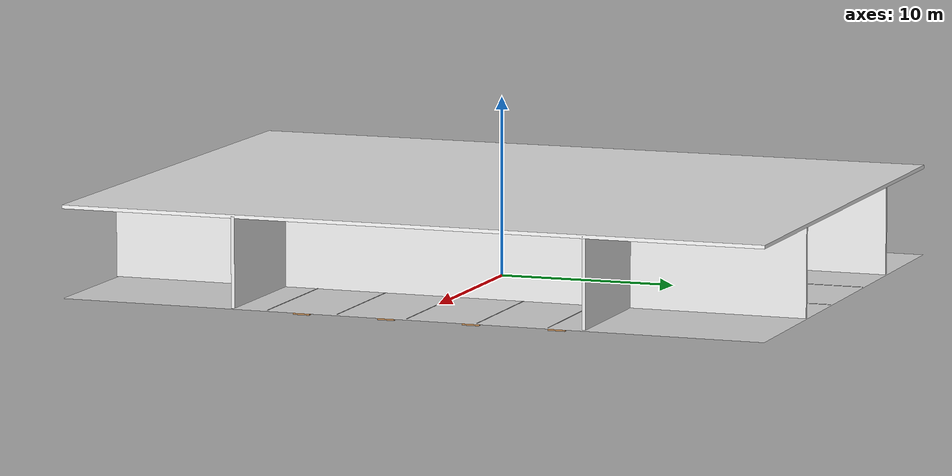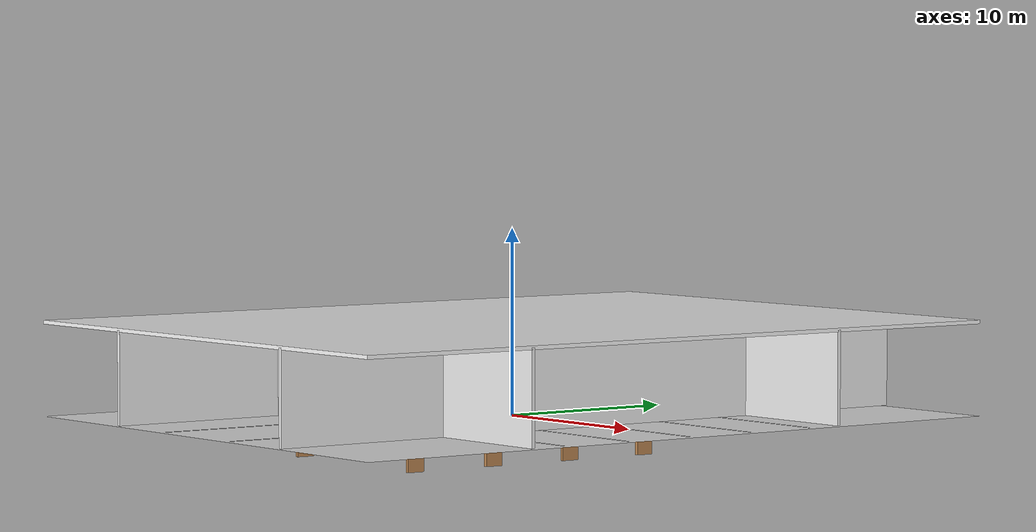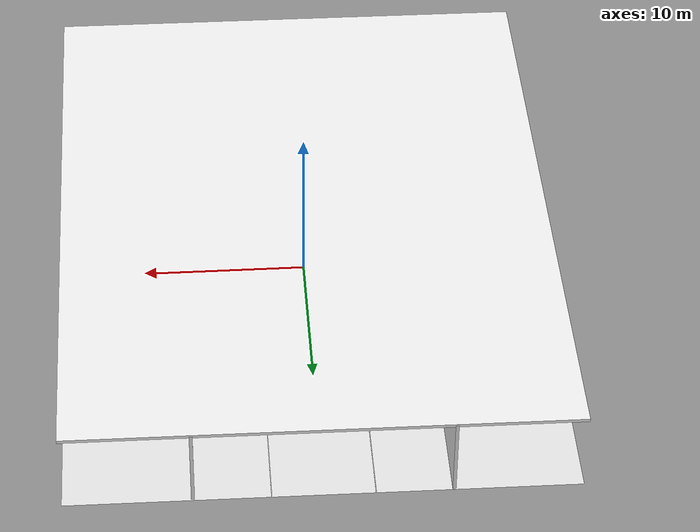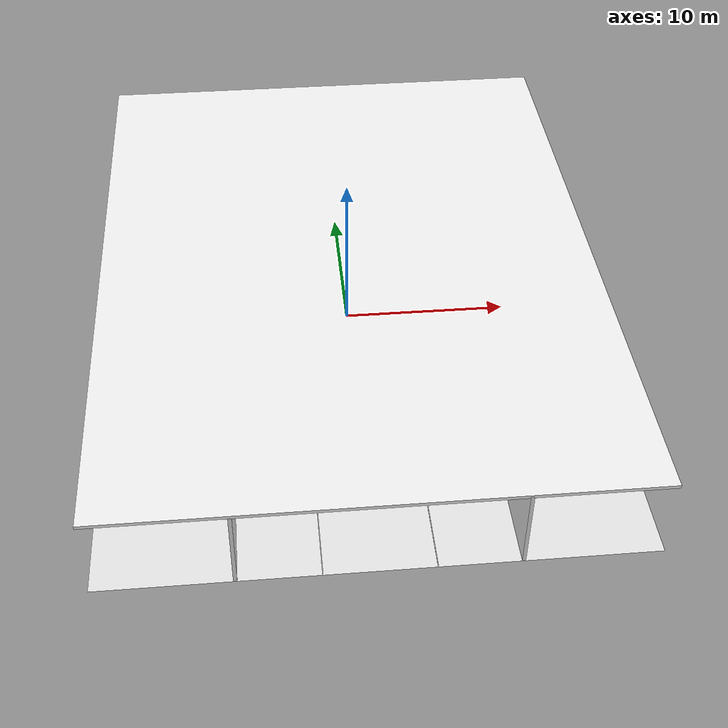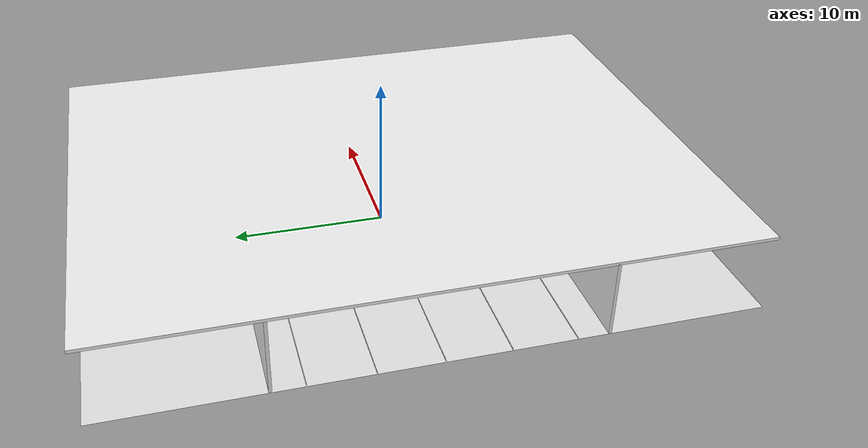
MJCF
<mujoco model="supermarket">
  <default>
    <geom condim="1" friction="1 0.1 0.1"/>
    <joint damping="0.1" stiffness="0"/>
  </default>

  <asset>
    <texture type="skybox" builtin="gradient" rgb1="1 1 1" rgb2=".8 .9 1" width="256" height="256"/>
  </asset>

  <worldbody>
    <!-- 相机设置 - 鸟瞰图 -->
    <camera name="store_cam" pos="0 0 15" fovy="90" zaxis="0 0 -1"/>
    <!-- 内部相机 -->
    <camera name="inside_cam" pos="0 -5 1.5" fovy="70"/>

    <!-- 光源 -->
    <!-- 天花板主灯 -->
    <light pos="0 -10 5" dir="0 0 -1" diffuse="1 1 1" ambient="0.8 0.8 0.8" castshadow="false"/>
    <light pos="0 -5 5" dir="0 0 -1" diffuse="1 1 1" ambient="0.8 0.8 0.8" castshadow="false"/>
    <light pos="0 0 5" dir="0 0 -1" diffuse="1 1 1" ambient="0.8 0.8 0.8" castshadow="false"/>
    <light pos="0 5 5" dir="0 0 -1" diffuse="1 1 1" ambient="0.8 0.8 0.8" castshadow="false"/>
    <light pos="0 10 5" dir="0 0 -1" diffuse="1 1 1" ambient="0.8 0.8 0.8" castshadow="false"/>

    <!-- 地板 - 瓷砖样式 -->
    <geom type="plane" size="15 20 0.1" rgba=".9 .9 .9 1" mass="0"/>
    <!-- 瓷砖线条 -->
    <geom type="box" size="0.02 20 0.01" pos="-3 0 0.01" rgba=".8 .8 .8 1" mass="0"/>
    <geom type="box" size="0.02 20 0.01" pos="3 0 0.01" rgba=".8 .8 .8 1" mass="0"/>
    <geom type="box" size="15 0.02 0.01" pos="0 -8 0.01" rgba=".8 .8 .8 1" mass="0"/>
    <geom type="box" size="15 0.02 0.01" pos="0 -4 0.01" rgba=".8 .8 .8 1" mass="0"/>
    <geom type="box" size="15 0.02 0.01" pos="0 0 0.01" rgba=".8 .8 .8 1" mass="0"/>
    <geom type="box" size="15 0.02 0.01" pos="0 4 0.01" rgba=".8 .8 .8 1" mass="0"/>
    <geom type="box" size="15 0.02 0.01" pos="0 8 0.01" rgba=".8 .8 .8 1" mass="0"/>

    <!-- 天花板 -->
    <geom type="box" size="15 20 0.1" pos="0 0 5" rgba=".95 .95 .95 1" mass="0"/>

    <!-- 墙壁 -->
    <!-- 后墙 -->
    <geom type="box" size="15 0.1 2.5" pos="0 -10 2.5" rgba=".9 .9 .9 1" mass="0"/>
    <!-- 前墙 -->
    <geom type="box" size="15 0.1 2.5" pos="0 10 2.5" rgba=".9 .9 .9 1" mass="0"/>
    <!-- 左墙 -->
    <geom type="box" size="0.1 20 2.5" pos="-7.5 0 2.5" rgba=".9 .9 .9 1" mass="0"/>
    <!-- 右墙 -->
    <geom type="box" size="0.1 20 2.5" pos="7.5 0 2.5" rgba=".9 .9 .9 1" mass="0"/>

    <!-- 左侧货架通道 -->
    <!-- 左侧货架组1 -->
    <body pos="-5 -10 0">
      <!-- 货架主体 -->
      <geom type="box" size="0.1 0.5 2" rgba=".7 .5 .3 1" mass="10"/>
      <geom type="box" size="1 0.5 0.1" pos="0 0 1" rgba=".7 .5 .3 1" mass="5"/>
      <geom type="box" size="1 0.5 0.1" pos="0 0 2" rgba=".7 .5 .3 1" mass="5"/>
      <geom type="box" size="1 0.5 0.1" pos="0 0 3" rgba=".7 .5 .3 1" mass="5"/>
      <!-- 商品 - 底层 -->
      <geom type="box" size="0.2 0.2 0.3" pos="0.5 0 0.5" rgba="1 0.2 0.2 1" mass="0.5"/>
      <geom type="box" size="0.2 0.2 0.3" pos="0 0 0.5" rgba="0.2 0.8 0.2 1" mass="0.5"/>
      <geom type="box" size="0.2 0.2 0.3" pos="-0.5 0 0.5" rgba="0.2 0.2 1 1" mass="0.5"/>
      <!-- 商品 - 中层 -->
      <geom type="box" size="0.2 0.2 0.3" pos="0.5 0 1.5" rgba="1 1 0.2 1" mass="0.5"/>
      <geom type="box" size="0.2 0.2 0.3" pos="0 0 1.5" rgba="1 0.2 1 1" mass="0.5"/>
      <geom type="box" size="0.2 0.2 0.3" pos="-0.5 0 1.5" rgba="0.2 1 1 1" mass="0.5"/>
      <!-- 商品 - 上层 -->
      <geom type="box" size="0.2 0.2 0.3" pos="0.5 0 2.5" rgba="0.8 0.4 0.2 1" mass="0.5"/>
      <geom type="box" size="0.2 0.2 0.3" pos="0 0 2.5" rgba="0.4 0.2 0.8 1" mass="0.5"/>
      <geom type="box" size="0.2 0.2 0.3" pos="-0.5 0 2.5" rgba="0.4 0.8 0.2 1" mass="0.5"/>
    </body>

    <!-- 左侧货架组2 -->
    <body pos="-5 -5 0">
      <!-- 货架主体 -->
      <geom type="box" size="0.1 0.5 2" rgba=".7 .5 .3 1" mass="10"/>
      <geom type="box" size="1 0.5 0.1" pos="0 0 1" rgba=".7 .5 .3 1" mass="5"/>
      <geom type="box" size="1 0.5 0.1" pos="0 0 2" rgba=".7 .5 .3 1" mass="5"/>
      <geom type="box" size="1 0.5 0.1" pos="0 0 3" rgba=".7 .5 .3 1" mass="5"/>
      <!-- 商品 -->
      <geom type="cylinder" size="0.15 0.2" pos="0.5 0 1" rgba="0.9 0.6 0.3 1" mass="0.5"/>
      <geom type="cylinder" size="0.15 0.2" pos="0 0 1" rgba="0.9 0.6 0.3 1" mass="0.5"/>
      <geom type="cylinder" size="0.15 0.2" pos="-0.5 0 1" rgba="0.9 0.6 0.3 1" mass="0.5"/>
      <geom type="cylinder" size="0.15 0.2" pos="0.5 0 2" rgba="0.9 0.6 0.3 1" mass="0.5"/>
      <geom type="cylinder" size="0.15 0.2" pos="0 0 2" rgba="0.9 0.6 0.3 1" mass="0.5"/>
      <geom type="cylinder" size="0.15 0.2" pos="-0.5 0 2" rgba="0.9 0.6 0.3 1" mass="0.5"/>
    </body>

    <!-- 左侧货架组3 -->
    <body pos="-5 0 0">
      <!-- 货架主体 -->
      <geom type="box" size="0.1 0.5 2" rgba=".7 .5 .3 1" mass="10"/>
      <geom type="box" size="1 0.5 0.1" pos="0 0 1" rgba=".7 .5 .3 1" mass="5"/>
      <geom type="box" size="1 0.5 0.1" pos="0 0 2" rgba=".7 .5 .3 1" mass="5"/>
      <geom type="box" size="1 0.5 0.1" pos="0 0 3" rgba=".7 .5 .3 1" mass="5"/>
      <!-- 商品 -->
      <geom type="box" size="0.2 0.2 0.1" pos="0.5 0 1.5" rgba="1 1 1 1" mass="0.5"/>
      <geom type="box" size="0.2 0.2 0.1" pos="0 0 1.5" rgba="1 1 1 1" mass="0.5"/>
      <geom type="box" size="0.2 0.2 0.1" pos="-0.5 0 1.5" rgba="1 1 1 1" mass="0.5"/>
      <geom type="box" size="0.2 0.2 0.1" pos="0.5 0 2.5" rgba="1 1 1 1" mass="0.5"/>
      <geom type="box" size="0.2 0.2 0.1" pos="0 0 2.5" rgba="1 1 1 1" mass="0.5"/>
      <geom type="box" size="0.2 0.2 0.1" pos="-0.5 0 2.5" rgba="1 1 1 1" mass="0.5"/>
    </body>

    <!-- 左侧货架组4 -->
    <body pos="-5 5 0">
      <!-- 货架主体 -->
      <geom type="box" size="0.1 0.5 2" rgba=".7 .5 .3 1" mass="10"/>
      <geom type="box" size="1 0.5 0.1" pos="0 0 1" rgba=".7 .5 .3 1" mass="5"/>
      <geom type="box" size="1 0.5 0.1" pos="0 0 2" rgba=".7 .5 .3 1" mass="5"/>
      <geom type="box" size="1 0.5 0.1" pos="0 0 3" rgba=".7 .5 .3 1" mass="5"/>
      <!-- 商品 -->
      <geom type="box" size="0.25 0.25 0.25" pos="0.5 0 1" rgba="0.8 0.1 0.8 1" mass="0.5"/>
      <geom type="box" size="0.25 0.25 0.25" pos="0 0 1" rgba="0.8 0.8 0.1 1" mass="0.5"/>
      <geom type="box" size="0.25 0.25 0.25" pos="-0.5 0 1" rgba="0.1 0.8 0.8 1" mass="0.5"/>
    </body>

    <!-- 右侧货架通道 -->
    <!-- 右侧货架组1 -->
    <body pos="5 -10 0">
      <!-- 货架主体 -->
      <geom type="box" size="0.1 0.5 2" rgba=".7 .5 .3 1" mass="10"/>
      <geom type="box" size="1 0.5 0.1" pos="0 0 1" rgba=".7 .5 .3 1" mass="5"/>
      <geom type="box" size="1 0.5 0.1" pos="0 0 2" rgba=".7 .5 .3 1" mass="5"/>
      <geom type="box" size="1 0.5 0.1" pos="0 0 3" rgba=".7 .5 .3 1" mass="5"/>
      <!-- 商品 -->
      <geom type="box" size="0.2 0.2 0.3" pos="0.5 0 0.5" rgba="1 0.2 0.2 1" mass="0.5"/>
      <geom type="box" size="0.2 0.2 0.3" pos="0 0 0.5" rgba="0.2 0.8 0.2 1" mass="0.5"/>
      <geom type="box" size="0.2 0.2 0.3" pos="-0.5 0 0.5" rgba="0.2 0.2 1 1" mass="0.5"/>
      <geom type="box" size="0.2 0.2 0.3" pos="0.5 0 1.5" rgba="1 1 0.2 1" mass="0.5"/>
      <geom type="box" size="0.2 0.2 0.3" pos="0 0 1.5" rgba="1 0.2 1 1" mass="0.5"/>
      <geom type="box" size="0.2 0.2 0.3" pos="-0.5 0 1.5" rgba="0.2 1 1 1" mass="0.5"/>
    </body>

    <!-- 右侧货架组2 -->
    <body pos="5 -5 0">
      <!-- 货架主体 -->
      <geom type="box" size="0.1 0.5 2" rgba=".7 .5 .3 1" mass="10"/>
      <geom type="box" size="1 0.5 0.1" pos="0 0 1" rgba=".7 .5 .3 1" mass="5"/>
      <geom type="box" size="1 0.5 0.1" pos="0 0 2" rgba=".7 .5 .3 1" mass="5"/>
      <geom type="box" size="1 0.5 0.1" pos="0 0 3" rgba=".7 .5 .3 1" mass="5"/>
      <!-- 商品 -->
      <geom type="cylinder" size="0.15 0.2" pos="0.5 0 1" rgba="0.9 0.6 0.3 1" mass="0.5"/>
      <geom type="cylinder" size="0.15 0.2" pos="0 0 1" rgba="0.9 0.6 0.3 1" mass="0.5"/>
      <geom type="cylinder" size="0.15 0.2" pos="-0.5 0 1" rgba="0.9 0.6 0.3 1" mass="0.5"/>
      <geom type="cylinder" size="0.15 0.2" pos="0.5 0 2" rgba="0.9 0.6 0.3 1" mass="0.5"/>
      <geom type="cylinder" size="0.15 0.2" pos="0 0 2" rgba="0.9 0.6 0.3 1" mass="0.5"/>
      <geom type="cylinder" size="0.15 0.2" pos="-0.5 0 2" rgba="0.9 0.6 0.3 1" mass="0.5"/>
    </body>

    <!-- 右侧货架组3 -->
    <body pos="5 0 0">
      <!-- 货架主体 -->
      <geom type="box" size="0.1 0.5 2" rgba=".7 .5 .3 1" mass="10"/>
      <geom type="box" size="1 0.5 0.1" pos="0 0 1" rgba=".7 .5 .3 1" mass="5"/>
      <geom type="box" size="1 0.5 0.1" pos="0 0 2" rgba=".7 .5 .3 1" mass="5"/>
      <geom type="box" size="1 0.5 0.1" pos="0 0 3" rgba=".7 .5 .3 1" mass="5"/>
      <!-- 商品 -->
      <geom type="box" size="0.2 0.2 0.1" pos="0.5 0 1.5" rgba="1 1 1 1" mass="0.5"/>
      <geom type="box" size="0.2 0.2 0.1" pos="0 0 1.5" rgba="1 1 1 1" mass="0.5"/>
      <geom type="box" size="0.2 0.2 0.1" pos="-0.5 0 1.5" rgba="1 1 1 1" mass="0.5"/>
      <geom type="box" size="0.2 0.2 0.1" pos="0.5 0 2.5" rgba="1 1 1 1" mass="0.5"/>
      <geom type="box" size="0.2 0.2 0.1" pos="0 0 2.5" rgba="1 1 1 1" mass="0.5"/>
      <geom type="box" size="0.2 0.2 0.1" pos="-0.5 0 2.5" rgba="1 1 1 1" mass="0.5"/>
    </body>

    <!-- 右侧货架组4 -->
    <body pos="5 5 0">
      <!-- 货架主体 -->
      <geom type="box" size="0.1 0.5 2" rgba=".7 .5 .3 1" mass="10"/>
      <geom type="box" size="1 0.5 0.1" pos="0 0 1" rgba=".7 .5 .3 1" mass="5"/>
      <geom type="box" size="1 0.5 0.1" pos="0 0 2" rgba=".7 .5 .3 1" mass="5"/>
      <geom type="box" size="1 0.5 0.1" pos="0 0 3" rgba=".7 .5 .3 1" mass="5"/>
      <!-- 商品 -->
      <geom type="box" size="0.25 0.25 0.25" pos="0.5 0 1" rgba="0.8 0.1 0.8 1" mass="0.5"/>
      <geom type="box" size="0.25 0.25 0.25" pos="0 0 1" rgba="0.8 0.8 0.1 1" mass="0.5"/>
      <geom type="box" size="0.25 0.25 0.25" pos="-0.5 0 1" rgba="0.1 0.8 0.8 1" mass="0.5"/>
    </body>

    <!-- 中间促销货架 -->
    <body pos="0 -8 0">
      <!-- 货架主体 -->
      <geom type="box" size="2 0.5 0.1" pos="0 0 0.5" rgba=".8 .6 .4 1" mass="10"/>
      <!-- 促销商品 -->
      <geom type="box" size="0.3 0.3 0.3" pos="1 0 1" rgba="0.9 0.1 0.1 1" mass="1"/>
      <geom type="box" size="0.3 0.3 0.3" pos="0 0 1" rgba="0.1 0.9 0.1 1" mass="1"/>
      <geom type="box" size="0.3 0.3 0.3" pos="-1 0 1" rgba="0.1 0.1 0.9 1" mass="1"/>
    </body>

    <!-- 宇树机器人 -->
    <body pos="0 0 1.5">
      <joint name="root" type="free" damping="0.1"/>

      <!-- 头部 -->
      <geom type="box" size="0.2 0.2 0.2" pos="0 0 0.4" rgba="0.1 0.1 0.1 1" mass="3"/>

      <!-- 躯干 -->
      <geom type="box" size="0.3 0.15 0.5" pos="0 0 -0.3" rgba="0.1 0.1 0.1 1" mass="15"/>

      <!-- 简单手臂 -->
      <geom type="box" size="0.1 0.3 0.1" pos="0.3 0 -0.1" rgba="0.1 0.1 0.1 1" mass="2"/>
      <geom type="box" size="0.1 0.3 0.1" pos="-0.3 0 -0.1" rgba="0.1 0.1 0.1 1" mass="2"/>

      <!-- 简单腿部 -->
      <geom type="box" size="0.1 0.3 0.1" pos="0.15 0 -0.8" rgba="0.1 0.1 0.1 1" mass="5"/>
      <geom type="box" size="0.1 0.3 0.1" pos="-0.15 0 -0.8" rgba="0.1 0.1 0.1 1" mass="5"/>
      <geom type="box" size="0.15 0.08 0.2" pos="0.15 0 -1.1" rgba="0.1 0.1 0.1 1" mass="2"/>
      <geom type="box" size="0.15 0.08 0.2" pos="-0.15 0 -1.1" rgba="0.1 0.1 0.1 1" mass="2"/>

      <!-- 绿色装饰条 -->
      <geom type="cylinder" size="0.05 0.2" pos="0.35 0 -0.4" rgba="0.2 0.8 0.2 1" mass="0.5"/>
      <geom type="cylinder" size="0.05 0.2" pos="-0.35 0 -0.4" rgba="0.2 0.8 0.2 1" mass="0.5"/>
    </body>

    <!-- 购物车 -->
    <body pos="0 8 0.5">
      <joint type="free"/>
      <!-- 购物车主体 -->
      <geom type="box" size="0.5 0.3 0.3" pos="0 0 0.3" rgba=".2 .5 .8 1" mass="10"/>
      <!-- 车轮 -->
      <geom type="cylinder" size="0.1 0.1" pos="0.6 0.2 0.1" rgba=".1 .1 .1 1" mass="1"/>
      <geom type="cylinder" size="0.1 0.1" pos="-0.6 0.2 0.1" rgba=".1 .1 .1 1" mass="1"/>
      <geom type="cylinder" size="0.1 0.1" pos="0.6 -0.2 0.1" rgba=".1 .1 .1 1" mass="1"/>
      <geom type="cylinder" size="0.1 0.1" pos="-0.6 -0.2 0.1" rgba=".1 .1 .1 1" mass="1"/>
      <!-- 购物车把手 -->
      <geom type="cylinder" size="0.05 0.4" pos="0 -0.5 0.5" rgba=".2 .5 .8 1" mass="2"/>
    </body>

    <!-- 顾客 -->
    <body pos="0 5 1.2">
      <joint type="free"/>
      <!-- 头部 -->
      <geom type="sphere" size="0.2" pos="0 0 0.2" rgba="0.8 0.5 0.2 1" mass="4"/>
      <!-- 身体 -->
      <geom type="box" size="0.25 0.15 0.4" pos="0 0 -0.3" rgba="0.2 0.4 0.8 1" mass="10"/>
      <!-- 腿部 -->
      <geom type="cylinder" size="0.08 0.4" pos="0.1 0 -0.8" rgba="0.1 0.1 0.1 1" mass="5"/>
      <geom type="cylinder" size="0.08 0.4" pos="-0.1 0 -0.8" rgba="0.1 0.1 0.1 1" mass="5"/>
      <!-- 手臂 -->
      <geom type="cylinder" size="0.06 0.3" pos="0.25 0 -0.2" rgba="0.8 0.5 0.2 1" mass="3"/>
      <geom type="cylinder" size="0.06 0.3" pos="-0.25 0 -0.2" rgba="0.8 0.5 0.2 1" mass="3"/>
    </body>
  </worldbody>

  <!-- 执行器设置 -->
  <actuator>
    <!-- 身体移动执行器 -->
    <velocity joint="root" name="forward" gear="0 0 0 0 50 0"/>
    <velocity joint="root" name="backward" gear="0 0 0 0 -50 0"/>
    <velocity joint="root" name="left" gear="0 0 0 50 0 0"/>
    <velocity joint="root" name="right" gear="0 0 0 -50 0 0"/>
  </actuator>

  <!-- 物理参数设置 -->
  <option gravity="0 0 -9.81" timestep="0.005"/>
  <statistic extent="15" center="0 0 2"/>
</mujoco>
